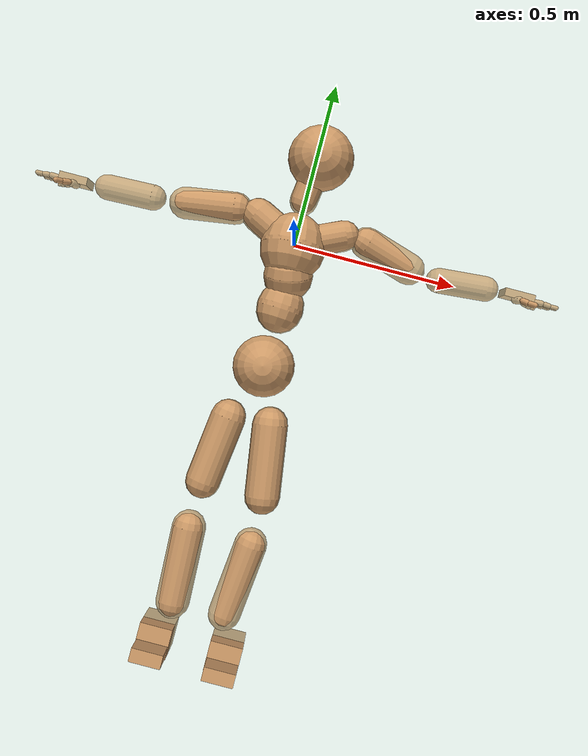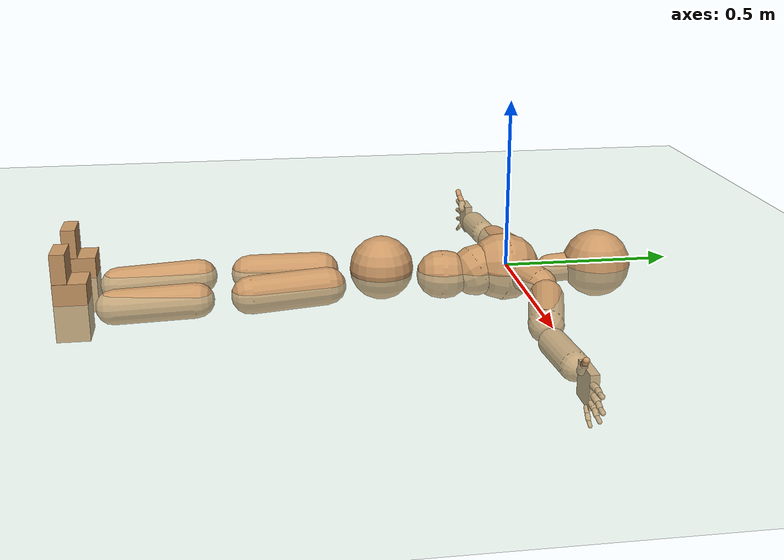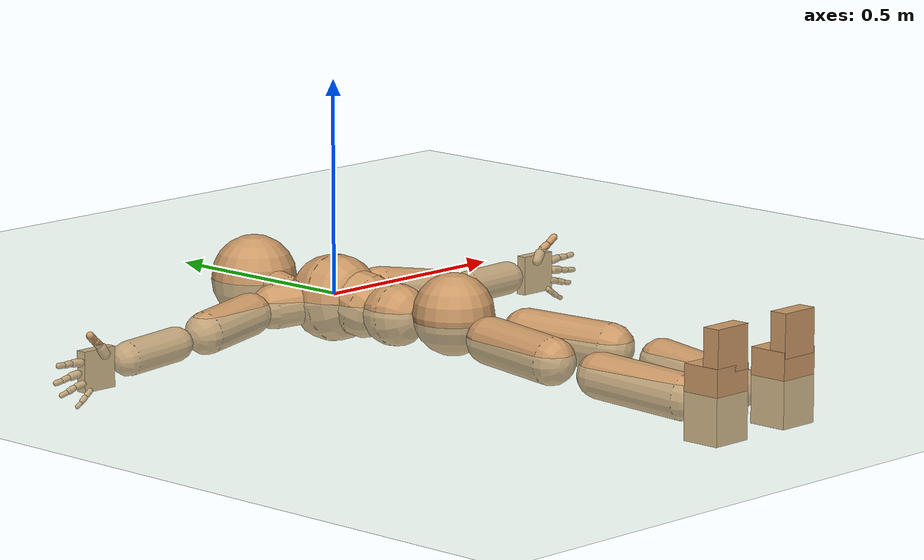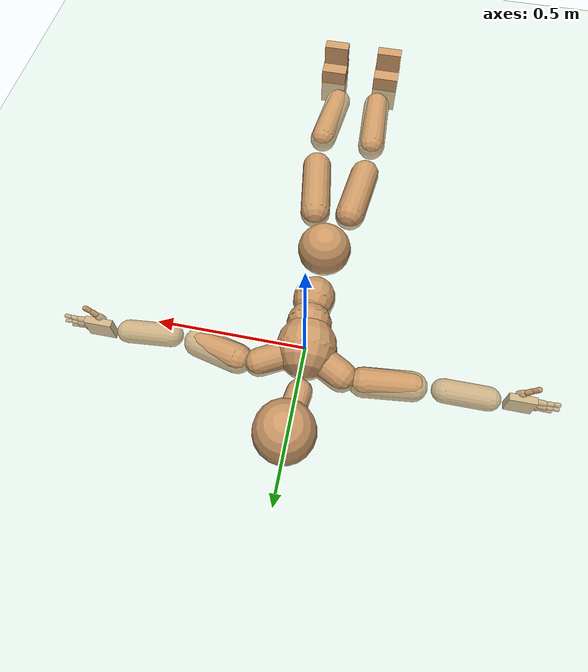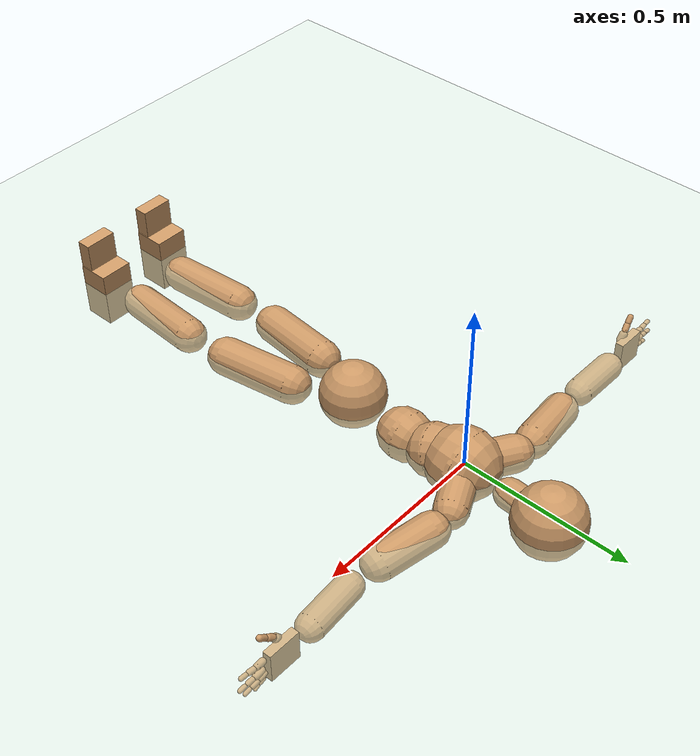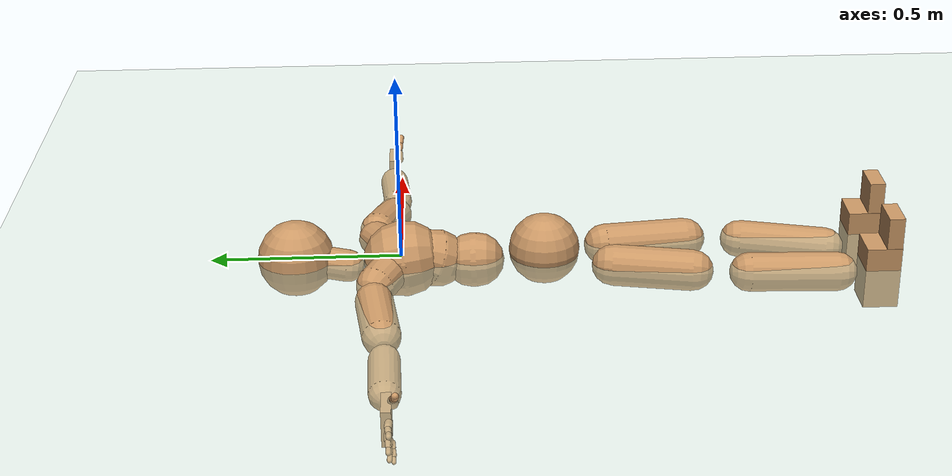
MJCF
<mujoco model="humanoid">
  <compiler coordinate="local"/>
  <default>
    <joint damping="0.0" armature="0.01" stiffness="0.0" limited="true"/>
    <geom conaffinity="1" condim="3" contype="7" margin="0.001" rgba="0.8 0.6 .4 1"/>
  </default>
  <asset>
    <texture type="skybox" builtin="gradient" rgb1=".4 .5 .6" rgb2="0 0 0" width="100" height="100"/>
    <texture builtin="flat" height="1278" mark="cross" markrgb="1 1 1" name="texgeom" random="0.01" rgb1="0.8 0.6 0.4" rgb2="0.8 0.6 0.4" type="cube" width="127"/>
    <texture builtin="checker" height="100" name="texplane" rgb1="0 0 0" rgb2="0.8 0.8 0.8" type="2d" width="100"/>
    <material name="MatPlane" reflectance="0.5" shininess="1" specular="1" texrepeat="60 60" texture="texplane"/>
    <material name="geom" texture="texgeom" texuniform="true"/>
  </asset>
  <worldbody>
    <light cutoff="100" diffuse="1 1 1" dir="-0 0 -1.3" directional="true" exponent="1" pos="0 0 1.3" specular=".1 .1 .1"/>
    <geom conaffinity="1" condim="3" name="floor" pos="0 0 0" rgba="0.8 0.9 0.8 1" size="100 100 .2" type="plane" material="MatPlane"/>
    <body name="Pelvis" pos="0.0026 -0.3798 0.0105">
      <freejoint name="Pelvis"/>
      <geom type="sphere" contype="1" conaffinity="1" density="4629.6296296296305" size="0.0944" pos="0.0000 0.0000 0.0000" name="Pelvis"/>
      <body name="L_Hip" pos="0.0525 -0.0941 -0.0245">
        <joint name="L_Hip_x" type="hinge" pos="0 0 0" axis="1 0 0" user="250 2.5 1 500 10 2" armature="0.01" range="-90.0000 90.0000" damping="0" stiffness="0"/>
        <joint name="L_Hip_y" type="hinge" pos="0 0 0" axis="0 1 0" user="250 2.5 1 500 10 2" armature="0.01" range="-90.0000 90.0000" damping="0" stiffness="0"/>
        <joint name="L_Hip_z" type="hinge" pos="0 0 0" axis="0 0 1" user="250 2.5 1 500 10 2" armature="0.01" range="-90.0000 90.0000" damping="0" stiffness="0"/>
        <geom type="capsule" contype="1" conaffinity="1" density="2040.816327" fromto="0.0109 -0.0736 -0.0014 0.0436 -0.2946 -0.0055" size="0.0553" name="L_Hip"/>
        <body name="L_Knee" pos="0.0546 -0.3682 -0.0069">
          <joint name="L_Knee_x" type="hinge" pos="0 0 0" axis="1 0 0" user="250 2.5 1 500 10 2" armature="0.01" range="-180.0000 180.0000" damping="0" stiffness="0"/>
          <joint name="L_Knee_y" type="hinge" pos="0 0 0" axis="0 1 0" user="250 2.5 1 500 10 2" armature="0.01" range="-5.6250 5.6250" damping="0" stiffness="0"/>
          <joint name="L_Knee_z" type="hinge" pos="0 0 0" axis="0 0 1" user="250 2.5 1 500 10 2" armature="0.01" range="-5.6250 5.6250" damping="0" stiffness="0"/>
          <geom type="capsule" contype="1" conaffinity="1" density="1234.567901" fromto="-0.0082 -0.0777 -0.0057 -0.0330 -0.3106 -0.0228" size="0.0507" name="L_Knee"/>
          <body name="L_Ankle" pos="-0.0412 -0.3883 -0.0285">
            <joint name="L_Ankle_x" type="hinge" pos="0 0 0" axis="1 0 0" user="150 2.5 1 500 10 2" armature="0.01" range="-90.0000 90.0000" damping="0" stiffness="0"/>
            <joint name="L_Ankle_y" type="hinge" pos="0 0 0" axis="0 1 0" user="150 2.5 1 500 10 2" armature="0.01" range="-90.0000 90.0000" damping="0" stiffness="0"/>
            <joint name="L_Ankle_z" type="hinge" pos="0 0 0" axis="0 0 1" user="150 2.5 1 500 10 2" armature="0.01" range="-90.0000 90.0000" damping="0" stiffness="0"/>
            <geom type="box" density="446.238823" pos="0.0403 -0.0276 0.0244" size="0.0497 0.0463 0.0845" quat="1.0000 0.0000 0.0000 0.0000" name="L_Ankle"/>
            <body name="L_Toe" pos="0.0468 -0.057 0.1184">
              <joint name="L_Toe_x" type="hinge" pos="0 0 0" axis="1 0 0" user="150 1 1 500 1 1" armature="0.01" range="-90.0000 90.0000" damping="0" stiffness="0"/>
              <joint name="L_Toe_y" type="hinge" pos="0 0 0" axis="0 1 0" user="150 1 1 500 1 1" armature="0.01" range="-45.0000 45.0000" damping="0" stiffness="0"/>
              <joint name="L_Toe_z" type="hinge" pos="0 0 0" axis="0 0 1" user="150 1 1 500 1 1" armature="0.01" range="-45.0000 45.0000" damping="0" stiffness="0"/>
              <geom type="box" density="422.849326" pos="-0.0064 0.0038 0.0260" size="0.0478 0.0207 0.0498" quat="1.0000 0.0000 0.0000 0.0000" name="L_Toe"/>
            </body>
          </body>
        </body>
      </body>
      <body name="R_Hip" pos="-0.0572 -0.1065 -0.0195">
        <joint name="R_Hip_x" type="hinge" pos="0 0 0" axis="1 0 0" user="250 2.5 1 500 10 2" armature="0.01" range="-90.0000 90.0000" damping="0" stiffness="0"/>
        <joint name="R_Hip_y" type="hinge" pos="0 0 0" axis="0 1 0" user="250 2.5 1 500 10 2" armature="0.01" range="-90.0000 90.0000" damping="0" stiffness="0"/>
        <joint name="R_Hip_z" type="hinge" pos="0 0 0" axis="0 0 1" user="250 2.5 1 500 10 2" armature="0.01" range="-90.0000 90.0000" damping="0" stiffness="0"/>
        <geom type="capsule" contype="1" conaffinity="1" density="2040.816327" fromto="-0.0089 -0.0701 -0.0028 -0.0355 -0.2804 -0.0113" size="0.0546" name="R_Hip"/>
        <body name="R_Knee" pos="-0.0444 -0.3504 -0.0141">
          <joint name="R_Knee_x" type="hinge" pos="0 0 0" axis="1 0 0" user="250 2.5 1 500 10 2" armature="0.01" range="-180.0000 180.0000" damping="0" stiffness="0"/>
          <joint name="R_Knee_y" type="hinge" pos="0 0 0" axis="0 1 0" user="250 2.5 1 500 10 2" armature="0.01" range="-5.6250 5.6250" damping="0" stiffness="0"/>
          <joint name="R_Knee_z" type="hinge" pos="0 0 0" axis="0 0 1" user="250 2.5 1 500 10 2" armature="0.01" range="-5.6250 5.6250" damping="0" stiffness="0"/>
          <geom type="capsule" contype="1" conaffinity="1" density="1234.567901" fromto="0.0029 -0.0792 -0.0035 0.0115 -0.3169 -0.0140" size="0.0522" name="R_Knee"/>
          <body name="R_Ankle" pos="0.0143 -0.3961 -0.0175">
            <joint name="R_Ankle_x" type="hinge" pos="0 0 0" axis="1 0 0" user="150 1 1 500 10 2" armature="0.01" range="-90.0000 90.0000" damping="0" stiffness="0"/>
            <joint name="R_Ankle_y" type="hinge" pos="0 0 0" axis="0 1 0" user="150 1 1 500 10 2" armature="0.01" range="-90.0000 90.0000" damping="0" stiffness="0"/>
            <joint name="R_Ankle_z" type="hinge" pos="0 0 0" axis="0 0 1" user="150 1 1 500 10 2" armature="0.01" range="-90.0000 90.0000" damping="0" stiffness="0"/>
            <geom type="box" density="446.2318" pos="-0.0241 -0.0252 0.0156" size="0.0497 0.0463 0.0845" quat="1.0000 0.0000 0.0000 0.0000" name="R_Ankle"/>
            <body name="R_Toe" pos="-0.0386 -0.0575 0.1194">
              <joint name="R_Toe_x" type="hinge" pos="0 0 0" axis="1 0 0" user="150 1 1 500 1 1" armature="0.01" range="-90.0000 90.0000" damping="0" stiffness="0"/>
              <joint name="R_Toe_y" type="hinge" pos="0 0 0" axis="0 1 0" user="150 1 1 500 1 1" armature="0.01" range="-45.0000 45.0000" damping="0" stiffness="0"/>
              <joint name="R_Toe_z" type="hinge" pos="0 0 0" axis="0 0 1" user="150 1 1 500 1 1" armature="0.01" range="-45.0000 45.0000" damping="0" stiffness="0"/>
              <geom type="box" density="422.866278" pos="0.0145 0.0067 0.0162" size="0.0478 0.0207 0.0498" quat="1.0000 0.0000 0.0000 0.0000" name="R_Toe"/>
            </body>
          </body>
        </body>
      </body>
      <body name="Torso" pos="-0.002 0.112 -0.0271">
        <joint name="Torso_x" type="hinge" pos="0 0 0" axis="1 0 0" user="500 5 1 500 10 2" armature="0.01" range="-60.0000 60.0000" damping="0" stiffness="0"/>
        <joint name="Torso_y" type="hinge" pos="0 0 0" axis="0 1 0" user="500 5 1 500 10 2" armature="0.01" range="-60.0000 60.0000" damping="0" stiffness="0"/>
        <joint name="Torso_z" type="hinge" pos="0 0 0" axis="0 0 1" user="500 5 1 500 10 2" armature="0.01" range="-60.0000 60.0000" damping="0" stiffness="0"/>
        <geom type="capsule" contype="1" conaffinity="1" density="2040.816327" fromto="0.0039 0.0665 -0.0026 0.0047 0.0813 -0.0031" size="0.0721" name="Torso"/>
        <body name="Spine" pos="0.0086 0.1479 -0.0057">
          <joint name="Spine_x" type="hinge" pos="0 0 0" axis="1 0 0" user="500 5 1 500 10 2" armature="0.01" range="-60.0000 60.0000" damping="0" stiffness="0"/>
          <joint name="Spine_y" type="hinge" pos="0 0 0" axis="0 1 0" user="500 5 1 500 10 2" armature="0.01" range="-60.0000 60.0000" damping="0" stiffness="0"/>
          <joint name="Spine_z" type="hinge" pos="0 0 0" axis="0 0 1" user="500 5 1 500 10 2" armature="0.01" range="-60.0000 60.0000" damping="0" stiffness="0"/>
          <geom type="capsule" contype="1" conaffinity="1" density="2040.816327" fromto="-0.0048 0.0256 0.0102 -0.0059 0.0312 0.0125" size="0.0763" name="Spine"/>
          <body name="Chest" pos="-0.0108 0.0568 0.0227">
            <joint name="Chest_x" type="hinge" pos="0 0 0" axis="1 0 0" user="500 5 1 500 10 2" armature="0.01" range="-60.0000 60.0000" damping="0" stiffness="0"/>
            <joint name="Chest_y" type="hinge" pos="0 0 0" axis="0 1 0" user="500 5 1 500 10 2" armature="0.01" range="-60.0000 60.0000" damping="0" stiffness="0"/>
            <joint name="Chest_z" type="hinge" pos="0 0 0" axis="0 0 1" user="500 5 1 500 10 2" armature="0.01" range="-60.0000 60.0000" damping="0" stiffness="0"/>
            <geom type="capsule" contype="1" conaffinity="1" density="2040.816327" fromto="-0.0019 0.0513 -0.0062 -0.0024 0.0627 -0.0076" size="0.1006" name="Chest"/>
            <body name="Neck" pos="-0.0118 0.1692 -0.0259">
              <joint name="Neck_x" type="hinge" pos="0 0 0" axis="1 0 0" user="150 1 1 250 50 4" armature="0.01" range="-180.0000 180.0000" damping="0" stiffness="0"/>
              <joint name="Neck_y" type="hinge" pos="0 0 0" axis="0 1 0" user="150 1 1 250 50 4" armature="0.01" range="-180.0000 180.0000" damping="0" stiffness="0"/>
              <joint name="Neck_z" type="hinge" pos="0 0 0" axis="0 0 1" user="150 1 1 250 50 4" armature="0.01" range="-180.0000 180.0000" damping="0" stiffness="0"/>
              <geom type="capsule" contype="1" conaffinity="1" density="1000" fromto="0.0050 0.0343 0.0043 0.0198 0.1374 0.0171" size="0.0427" name="Neck"/>
              <body name="Head" pos="0.0248 0.1717 0.0214">
                <joint name="Head_x" type="hinge" pos="0 0 0" axis="1 0 0" user="150 1 1 250 50 4" armature="0.01" range="-90.0000 90.0000" damping="0" stiffness="0"/>
                <joint name="Head_y" type="hinge" pos="0 0 0" axis="0 1 0" user="150 1 1 250 50 4" armature="0.01" range="-90.0000 90.0000" damping="0" stiffness="0"/>
                <joint name="Head_z" type="hinge" pos="0 0 0" axis="0 0 1" user="150 1 1 250 50 4" armature="0.01" range="-90.0000 90.0000" damping="0" stiffness="0"/>
                <geom type="sphere" contype="1" conaffinity="1" density="1000" size="0.1013" pos="0.0000 0.0000 0.0000" name="Head"/>
              </body>
            </body>
            <body name="L_Thorax" pos="0.0459 0.0869 -0.0049">
              <joint name="L_Thorax_x" type="hinge" pos="0 0 0" axis="1 0 0" user="200 2 1 500 50 4" armature="0.01" range="-180.0000 180.0000" damping="0" stiffness="0"/>
              <joint name="L_Thorax_y" type="hinge" pos="0 0 0" axis="0 1 0" user="200 2 1 500 50 4" armature="0.01" range="-180.0000 180.0000" damping="0" stiffness="0"/>
              <joint name="L_Thorax_z" type="hinge" pos="0 0 0" axis="0 0 1" user="200 2 1 500 50 4" armature="0.01" range="-180.0000 180.0000" damping="0" stiffness="0"/>
              <geom type="capsule" contype="1" conaffinity="1" density="1000" fromto="0.0237 0.0113 -0.0029 0.0946 0.0452 -0.0118" size="0.0476" name="L_Thorax"/>
              <body name="L_Shoulder" pos="0.1183 0.0565 -0.0147">
                <joint name="L_Shoulder_x" type="hinge" pos="0 0 0" axis="1 0 0" user="200 2 1 500 50 4" armature="0.01" range="-180.0000 180.0000" damping="0" stiffness="0"/>
                <joint name="L_Shoulder_y" type="hinge" pos="0 0 0" axis="0 1 0" user="200 2 1 500 50 4" armature="0.01" range="-180.0000 180.0000" damping="0" stiffness="0"/>
                <joint name="L_Shoulder_z" type="hinge" pos="0 0 0" axis="0 0 1" user="200 2 1 500 50 4" armature="0.01" range="-180.0000 180.0000" damping="0" stiffness="0"/>
                <geom type="capsule" contype="1" conaffinity="1" density="1000" fromto="0.0493 -0.0138 -0.0079 0.1973 -0.0554 -0.0316" size="0.0496" name="L_Shoulder"/>
                <body name="L_Elbow" pos="0.2467 -0.0692 -0.0395">
                  <joint name="L_Elbow_x" type="hinge" pos="0 0 0" axis="1 0 0" user="150 1 1 150 10 2" armature="0.01" range="-720.0000 720.0000" damping="0" stiffness="0"/>
                  <joint name="L_Elbow_y" type="hinge" pos="0 0 0" axis="0 1 0" user="150 1 1 150 10 2" armature="0.01" range="-720.0000 720.0000" damping="0" stiffness="0"/>
                  <joint name="L_Elbow_z" type="hinge" pos="0 0 0" axis="0 0 1" user="150 1 1 150 10 2" armature="0.01" range="-720.0000 720.0000" damping="0" stiffness="0"/>
                  <geom type="capsule" contype="1" conaffinity="1" density="1000" fromto="0.0495 0.0041 -0.0003 0.1980 0.0163 -0.0011" size="0.0394" name="L_Elbow"/>
                  <body name="L_Wrist" pos="0.2474 0.0204 -0.0014">
                    <joint name="L_Wrist_x" type="hinge" pos="0 0 0" axis="1 0 0" user="100 1 1 150 1 1" armature="0.01" range="-180.0000 180.0000" damping="0" stiffness="0"/>
                    <joint name="L_Wrist_y" type="hinge" pos="0 0 0" axis="0 1 0" user="100 1 1 150 1 1" armature="0.01" range="-180.0000 180.0000" damping="0" stiffness="0"/>
                    <joint name="L_Wrist_z" type="hinge" pos="0 0 0" axis="0 0 1" user="100 1 1 150 1 1" armature="0.01" range="-180.0000 180.0000" damping="0" stiffness="0"/>
                    <geom type="box" density="1213.894676" pos="0.0513 -0.0015 -0.0029" size="0.0473 0.0122 0.0465" quat="1.0000 0.0000 0.0000 0.0000" name="L_Wrist"/>
                    <body name="L_Index1" pos="0.0996 -0.0083 0.0197">
                      <joint name="L_Index1_x" type="hinge" pos="0 0 0" axis="1 0 0" user="100 10 1 150" armature="0.01" range="-180.0000 180.0000" damping="0" stiffness="0"/>
                      <joint name="L_Index1_y" type="hinge" pos="0 0 0" axis="0 1 0" user="100 10 1 150" armature="0.01" range="-180.0000 180.0000" damping="0" stiffness="0"/>
                      <joint name="L_Index1_z" type="hinge" pos="0 0 0" axis="0 0 1" user="100 10 1 150" armature="0.01" range="-180.0000 180.0000" damping="0" stiffness="0"/>
                      <geom type="capsule" contype="1" conaffinity="1" density="1000" fromto="0.0064 0.0004 0.0006 0.0255 0.0018 0.0023" size="0.0093" name="L_Index1"/>
                      <body name="L_Index2" pos="0.0318 0.0022 0.0029">
                        <joint name="L_Index2_x" type="hinge" pos="0 0 0" axis="1 0 0" user="100 10 1 150" armature="0.01" range="-180.0000 180.0000" damping="0" stiffness="0"/>
                        <joint name="L_Index2_y" type="hinge" pos="0 0 0" axis="0 1 0" user="100 10 1 150" armature="0.01" range="-180.0000 180.0000" damping="0" stiffness="0"/>
                        <joint name="L_Index2_z" type="hinge" pos="0 0 0" axis="0 0 1" user="100 10 1 150" armature="0.01" range="-180.0000 180.0000" damping="0" stiffness="0"/>
                        <geom type="capsule" contype="1" conaffinity="1" density="1000" fromto="0.0045 -0.0005 -0.0000 0.0180 -0.0019 -0.0001" size="0.0077" name="L_Index2"/>
                        <body name="L_Index3" pos="0.0225 -0.0024 -0.0001">
                          <joint name="L_Index3_x" type="hinge" pos="0 0 0" axis="1 0 0" user="100 10 1 150" armature="0.01" range="-180.0000 180.0000" damping="0" stiffness="0"/>
                          <joint name="L_Index3_y" type="hinge" pos="0 0 0" axis="0 1 0" user="100 10 1 150" armature="0.01" range="-180.0000 180.0000" damping="0" stiffness="0"/>
                          <joint name="L_Index3_z" type="hinge" pos="0 0 0" axis="0 0 1" user="100 10 1 150" armature="0.01" range="-180.0000 180.0000" damping="0" stiffness="0"/>
                          <geom type="capsule" contype="1" conaffinity="1" density="1000" fromto="0.0049 -0.0001 0.0004 0.0196 -0.0003 0.0015" size="0.0065" name="L_Index3"/>
                        </body>
                      </body>
                    </body>
                    <body name="L_Middle1" pos="0.1071 -0.0061 -0.004">
                      <joint name="L_Middle1_x" type="hinge" pos="0 0 0" axis="1 0 0" user="100 10 1 150" armature="0.01" range="-180.0000 180.0000" damping="0" stiffness="0"/>
                      <joint name="L_Middle1_y" type="hinge" pos="0 0 0" axis="0 1 0" user="100 10 1 150" armature="0.01" range="-180.0000 180.0000" damping="0" stiffness="0"/>
                      <joint name="L_Middle1_z" type="hinge" pos="0 0 0" axis="0 0 1" user="100 10 1 150" armature="0.01" range="-180.0000 180.0000" damping="0" stiffness="0"/>
                      <geom type="capsule" contype="1" conaffinity="1" density="1000" fromto="0.0061 0.0001 -0.0008 0.0244 0.0006 -0.0032" size="0.0095" name="L_Middle1"/>
                      <body name="L_Middle2" pos="0.0305 0.0007 -0.004">
                        <joint name="L_Middle2_x" type="hinge" pos="0 0 0" axis="1 0 0" user="100 10 1 150" armature="0.01" range="-180.0000 180.0000" damping="0" stiffness="0"/>
                        <joint name="L_Middle2_y" type="hinge" pos="0 0 0" axis="0 1 0" user="100 10 1 150" armature="0.01" range="-180.0000 180.0000" damping="0" stiffness="0"/>
                        <joint name="L_Middle2_z" type="hinge" pos="0 0 0" axis="0 0 1" user="100 10 1 150" armature="0.01" range="-180.0000 180.0000" damping="0" stiffness="0"/>
                        <geom type="capsule" contype="1" conaffinity="1" density="1000" fromto="0.0047 -0.0004 -0.0008 0.0187 -0.0016 -0.0033" size="0.0071" name="L_Middle2"/>
                        <body name="L_Middle3" pos="0.0233 -0.0021 -0.0042">
                          <joint name="L_Middle3_x" type="hinge" pos="0 0 0" axis="1 0 0" user="100 10 1 150" armature="0.01" range="-180.0000 180.0000" damping="0" stiffness="0"/>
                          <joint name="L_Middle3_y" type="hinge" pos="0 0 0" axis="0 1 0" user="100 10 1 150" armature="0.01" range="-180.0000 180.0000" damping="0" stiffness="0"/>
                          <joint name="L_Middle3_z" type="hinge" pos="0 0 0" axis="0 0 1" user="100 10 1 150" armature="0.01" range="-180.0000 180.0000" damping="0" stiffness="0"/>
                          <geom type="capsule" contype="1" conaffinity="1" density="1000" fromto="0.0051 -0.0000 -0.0004 0.0203 -0.0000 -0.0017" size="0.0062" name="L_Middle3"/>
                        </body>
                      </body>
                    </body>
                    <body name="L_Pinky1" pos="0.0822 -0.0143 -0.0441">
                      <joint name="L_Pinky1_x" type="hinge" pos="0 0 0" axis="1 0 0" user="100 10 1 150" armature="0.01" range="-180.0000 180.0000" damping="0" stiffness="0"/>
                      <joint name="L_Pinky1_y" type="hinge" pos="0 0 0" axis="0 1 0" user="100 10 1 150" armature="0.01" range="-180.0000 180.0000" damping="0" stiffness="0"/>
                      <joint name="L_Pinky1_z" type="hinge" pos="0 0 0" axis="0 0 1" user="100 10 1 150" armature="0.01" range="-180.0000 180.0000" damping="0" stiffness="0"/>
                      <geom type="capsule" contype="1" conaffinity="1" density="1000" fromto="0.0032 -0.0002 -0.0024 0.0126 -0.0010 -0.0096" size="0.0067" name="L_Pinky1"/>
                      <body name="L_Pinky2" pos="0.0158 -0.0012 -0.012">
                        <joint name="L_Pinky2_x" type="hinge" pos="0 0 0" axis="1 0 0" user="100 10 1 150" armature="0.01" range="-180.0000 180.0000" damping="0" stiffness="0"/>
                        <joint name="L_Pinky2_y" type="hinge" pos="0 0 0" axis="0 1 0" user="100 10 1 150" armature="0.01" range="-180.0000 180.0000" damping="0" stiffness="0"/>
                        <joint name="L_Pinky2_z" type="hinge" pos="0 0 0" axis="0 0 1" user="100 10 1 150" armature="0.01" range="-180.0000 180.0000" damping="0" stiffness="0"/>
                        <geom type="capsule" contype="1" conaffinity="1" density="1000" fromto="0.0031 -0.0003 -0.0022 0.0125 -0.0014 -0.0089" size="0.0065" name="L_Pinky2"/>
                        <body name="L_Pinky3" pos="0.0157 -0.0017 -0.0111">
                          <joint name="L_Pinky3_x" type="hinge" pos="0 0 0" axis="1 0 0" user="100 10 1 150" armature="0.01" range="-180.0000 180.0000" damping="0" stiffness="0"/>
                          <joint name="L_Pinky3_y" type="hinge" pos="0 0 0" axis="0 1 0" user="100 10 1 150" armature="0.01" range="-180.0000 180.0000" damping="0" stiffness="0"/>
                          <joint name="L_Pinky3_z" type="hinge" pos="0 0 0" axis="0 0 1" user="100 10 1 150" armature="0.01" range="-180.0000 180.0000" damping="0" stiffness="0"/>
                          <geom type="capsule" contype="1" conaffinity="1" density="1000" fromto="0.0035 0.0001 -0.0018 0.0141 0.0002 -0.0073" size="0.005" name="L_Pinky3"/>
                        </body>
                      </body>
                    </body>
                    <body name="L_Ring1" pos="0.0954 -0.0089 -0.0275">
                      <joint name="L_Ring1_x" type="hinge" pos="0 0 0" axis="1 0 0" user="100 10 1 150" armature="0.01" range="-180.0000 180.0000" damping="0" stiffness="0"/>
                      <joint name="L_Ring1_y" type="hinge" pos="0 0 0" axis="0 1 0" user="100 10 1 150" armature="0.01" range="-180.0000 180.0000" damping="0" stiffness="0"/>
                      <joint name="L_Ring1_z" type="hinge" pos="0 0 0" axis="0 0 1" user="100 10 1 150" armature="0.01" range="-180.0000 180.0000" damping="0" stiffness="0"/>
                      <geom type="capsule" contype="1" conaffinity="1" density="1000" fromto="0.0056 0.0003 -0.0011 0.0225 0.0012 -0.0042" size="0.008" name="L_Ring1"/>
                      <body name="L_Ring2" pos="0.0281 0.0015 -0.0053">
                        <joint name="L_Ring2_x" type="hinge" pos="0 0 0" axis="1 0 0" user="100 10 1 150" armature="0.01" range="-180.0000 180.0000" damping="0" stiffness="0"/>
                        <joint name="L_Ring2_y" type="hinge" pos="0 0 0" axis="0 1 0" user="100 10 1 150" armature="0.01" range="-180.0000 180.0000" damping="0" stiffness="0"/>
                        <joint name="L_Ring2_z" type="hinge" pos="0 0 0" axis="0 0 1" user="100 10 1 150" armature="0.01" range="-180.0000 180.0000" damping="0" stiffness="0"/>
                        <geom type="capsule" contype="1" conaffinity="1" density="1000" fromto="0.0046 -0.0003 -0.0014 0.0182 -0.0012 -0.0056" size="0.0075" name="L_Ring2"/>
                        <body name="L_Ring3" pos="0.0228 -0.0015 -0.007">
                          <joint name="L_Ring3_x" type="hinge" pos="0 0 0" axis="1 0 0" user="100 10 1 150" armature="0.01" range="-180.0000 180.0000" damping="0" stiffness="0"/>
                          <joint name="L_Ring3_y" type="hinge" pos="0 0 0" axis="0 1 0" user="100 10 1 150" armature="0.01" range="-180.0000 180.0000" damping="0" stiffness="0"/>
                          <joint name="L_Ring3_z" type="hinge" pos="0 0 0" axis="0 0 1" user="100 10 1 150" armature="0.01" range="-180.0000 180.0000" damping="0" stiffness="0"/>
                          <geom type="capsule" contype="1" conaffinity="1" density="1000" fromto="0.0050 0.0001 -0.0010 0.0198 0.0004 -0.0040" size="0.0058" name="L_Ring3"/>
                        </body>
                      </body>
                    </body>
                    <body name="L_Thumb1" pos="0.0392 -0.0181 0.026">
                      <joint name="L_Thumb1_x" type="hinge" pos="0 0 0" axis="1 0 0" user="100 10 1 150" armature="0.01" range="-180.0000 180.0000" damping="0" stiffness="0"/>
                      <joint name="L_Thumb1_y" type="hinge" pos="0 0 0" axis="0 1 0" user="100 10 1 150" armature="0.01" range="-180.0000 180.0000" damping="0" stiffness="0"/>
                      <joint name="L_Thumb1_z" type="hinge" pos="0 0 0" axis="0 0 1" user="100 10 1 150" armature="0.01" range="-180.0000 180.0000" damping="0" stiffness="0"/>
                      <geom type="capsule" contype="1" conaffinity="1" density="1000" fromto="0.0034 0.0002 0.0051 0.0135 0.0008 0.0203" size="0.0121" name="L_Thumb1"/>
                      <body name="L_Thumb2" pos="0.0168 0.001 0.0254">
                        <joint name="L_Thumb2_x" type="hinge" pos="0 0 0" axis="1 0 0" user="100 10 1 150" armature="0.01" range="-180.0000 180.0000" damping="0" stiffness="0"/>
                        <joint name="L_Thumb2_y" type="hinge" pos="0 0 0" axis="0 1 0" user="100 10 1 150" armature="0.01" range="-180.0000 180.0000" damping="0" stiffness="0"/>
                        <joint name="L_Thumb2_z" type="hinge" pos="0 0 0" axis="0 0 1" user="100 10 1 150" armature="0.01" range="-180.0000 180.0000" damping="0" stiffness="0"/>
                        <geom type="capsule" contype="1" conaffinity="1" density="1000" fromto="0.0041 -0.0010 0.0031 0.0164 -0.0040 0.0125" size="0.0096" name="L_Thumb2"/>
                        <body name="L_Thumb3" pos="0.0205 -0.005 0.0156">
                          <joint name="L_Thumb3_x" type="hinge" pos="0 0 0" axis="1 0 0" user="100 10 1 150" armature="0.01" range="-180.0000 180.0000" damping="0" stiffness="0"/>
                          <joint name="L_Thumb3_y" type="hinge" pos="0 0 0" axis="0 1 0" user="100 10 1 150" armature="0.01" range="-180.0000 180.0000" damping="0" stiffness="0"/>
                          <joint name="L_Thumb3_z" type="hinge" pos="0 0 0" axis="0 0 1" user="100 10 1 150" armature="0.01" range="-180.0000 180.0000" damping="0" stiffness="0"/>
                          <geom type="capsule" contype="1" conaffinity="1" density="1000" fromto="0.0045 -0.0006 0.0035 0.0180 -0.0024 0.0141" size="0.0087" name="L_Thumb3"/>
                        </body>
                      </body>
                    </body>
                  </body>
                </body>
              </body>
            </body>
            <body name="R_Thorax" pos="-0.0469 0.0862 -0.0107">
              <joint name="R_Thorax_x" type="hinge" pos="0 0 0" axis="1 0 0" user="200 2 1 150 10 2" armature="0.01" range="-180.0000 180.0000" damping="0" stiffness="0"/>
              <joint name="R_Thorax_y" type="hinge" pos="0 0 0" axis="0 1 0" user="200 2 1 150 10 2" armature="0.01" range="-180.0000 180.0000" damping="0" stiffness="0"/>
              <joint name="R_Thorax_z" type="hinge" pos="0 0 0" axis="0 0 1" user="200 2 1 150 10 2" armature="0.01" range="-180.0000 180.0000" damping="0" stiffness="0"/>
              <geom type="capsule" contype="1" conaffinity="1" density="1000" fromto="-0.0204 0.0105 -0.0022 -0.0817 0.0418 -0.0088" size="0.0524" name="R_Thorax"/>
              <body name="R_Shoulder" pos="-0.1022 0.0523 -0.011">
                <joint name="R_Shoulder_x" type="hinge" pos="0 0 0" axis="1 0 0" user="200 2 1 250 10 2" armature="0.01" range="-180.0000 180.0000" damping="0" stiffness="0"/>
                <joint name="R_Shoulder_y" type="hinge" pos="0 0 0" axis="0 1 0" user="200 2 1 250 10 2" armature="0.01" range="-180.0000 180.0000" damping="0" stiffness="0"/>
                <joint name="R_Shoulder_z" type="hinge" pos="0 0 0" axis="0 0 1" user="200 2 1 250 10 2" armature="0.01" range="-180.0000 180.0000" damping="0" stiffness="0"/>
                <geom type="capsule" contype="1" conaffinity="1" density="1000" fromto="-0.0527 -0.0070 -0.0051 -0.2107 -0.0281 -0.0203" size="0.0495" name="R_Shoulder"/>
                <body name="R_Elbow" pos="-0.2633 -0.0351 -0.0253">
                  <joint name="R_Elbow_x" type="hinge" pos="0 0 0" axis="1 0 0" user="150 1 1 150 10 2" armature="0.01" range="-720.0000 720.0000" damping="0" stiffness="0"/>
                  <joint name="R_Elbow_y" type="hinge" pos="0 0 0" axis="0 1 0" user="150 1 1 150 10 2" armature="0.01" range="-720.0000 720.0000" damping="0" stiffness="0"/>
                  <joint name="R_Elbow_z" type="hinge" pos="0 0 0" axis="0 0 1" user="150 1 1 150 10 2" armature="0.01" range="-720.0000 720.0000" damping="0" stiffness="0"/>
                  <geom type="capsule" contype="1" conaffinity="1" density="1000" fromto="-0.0489 -0.0011 -0.0028 -0.1956 -0.0046 -0.0111" size="0.0397" name="R_Elbow"/>
                  <body name="R_Wrist" pos="-0.2445 -0.0057 -0.0138">
                    <joint name="R_Wrist_x" type="hinge" pos="0 0 0" axis="1 0 0" user="100 1 1 150 1 1" armature="0.01" range="-180.0000 180.0000" damping="0" stiffness="0"/>
                    <joint name="R_Wrist_y" type="hinge" pos="0 0 0" axis="0 1 0" user="100 1 1 150 1 1" armature="0.01" range="-180.0000 180.0000" damping="0" stiffness="0"/>
                    <joint name="R_Wrist_z" type="hinge" pos="0 0 0" axis="0 0 1" user="100 1 1 150 1 1" armature="0.01" range="-180.0000 180.0000" damping="0" stiffness="0"/>
                    <geom type="box" density="1242.239774" pos="-0.0525 -0.0046 -0.0024" size="0.0446 0.0122 0.0465" quat="1.0000 0.0000 0.0000 0.0000" name="R_Wrist"/>
                    <body name="R_Index1" pos="-0.0977 -0.0115 0.0201">
                      <joint name="R_Index1_x" type="hinge" pos="0 0 0" axis="1 0 0" user="100 10 1 150" armature="0.01" range="-180.0000 180.0000" damping="0" stiffness="0"/>
                      <joint name="R_Index1_y" type="hinge" pos="0 0 0" axis="0 1 0" user="100 10 1 150" armature="0.01" range="-180.0000 180.0000" damping="0" stiffness="0"/>
                      <joint name="R_Index1_z" type="hinge" pos="0 0 0" axis="0 0 1" user="100 10 1 150" armature="0.01" range="-180.0000 180.0000" damping="0" stiffness="0"/>
                      <geom type="capsule" contype="1" conaffinity="1" density="1000" fromto="-0.0064 0.0004 0.0006 -0.0255 0.0018 0.0023" size="0.0093" name="R_Index1"/>
                      <body name="R_Index2" pos="-0.0318 0.0022 0.0029">
                        <joint name="R_Index2_x" type="hinge" pos="0 0 0" axis="1 0 0" user="100 10 1 150" armature="0.01" range="-180.0000 180.0000" damping="0" stiffness="0"/>
                        <joint name="R_Index2_y" type="hinge" pos="0 0 0" axis="0 1 0" user="100 10 1 150" armature="0.01" range="-180.0000 180.0000" damping="0" stiffness="0"/>
                        <joint name="R_Index2_z" type="hinge" pos="0 0 0" axis="0 0 1" user="100 10 1 150" armature="0.01" range="-180.0000 180.0000" damping="0" stiffness="0"/>
                        <geom type="capsule" contype="1" conaffinity="1" density="1000" fromto="-0.0045 -0.0005 -0.0000 -0.0180 -0.0019 -0.0001" size="0.0077" name="R_Index2"/>
                        <body name="R_Index3" pos="-0.0225 -0.0024 -0.0001">
                          <joint name="R_Index3_x" type="hinge" pos="0 0 0" axis="1 0 0" user="100 10 1 150" armature="0.01" range="-180.0000 180.0000" damping="0" stiffness="0"/>
                          <joint name="R_Index3_y" type="hinge" pos="0 0 0" axis="0 1 0" user="100 10 1 150" armature="0.01" range="-180.0000 180.0000" damping="0" stiffness="0"/>
                          <joint name="R_Index3_z" type="hinge" pos="0 0 0" axis="0 0 1" user="100 10 1 150" armature="0.01" range="-180.0000 180.0000" damping="0" stiffness="0"/>
                          <geom type="capsule" contype="1" conaffinity="1" density="1000" fromto="-0.0041 -0.0001 0.0004 -0.0164 -0.0003 0.0015" size="0.0068" name="R_Index3"/>
                        </body>
                      </body>
                    </body>
                    <body name="R_Middle1" pos="-0.1052 -0.0092 -0.0035">
                      <joint name="R_Middle1_x" type="hinge" pos="0 0 0" axis="1 0 0" user="100 10 1 150" armature="0.01" range="-180.0000 180.0000" damping="0" stiffness="0"/>
                      <joint name="R_Middle1_y" type="hinge" pos="0 0 0" axis="0 1 0" user="100 10 1 150" armature="0.01" range="-180.0000 180.0000" damping="0" stiffness="0"/>
                      <joint name="R_Middle1_z" type="hinge" pos="0 0 0" axis="0 0 1" user="100 10 1 150" armature="0.01" range="-180.0000 180.0000" damping="0" stiffness="0"/>
                      <geom type="capsule" contype="1" conaffinity="1" density="1000" fromto="-0.0061 0.0001 -0.0008 -0.0244 0.0006 -0.0032" size="0.0095" name="R_Middle1"/>
                      <body name="R_Middle2" pos="-0.0305 0.0007 -0.004">
                        <joint name="R_Middle2_x" type="hinge" pos="0 0 0" axis="1 0 0" user="100 10 1 150" armature="0.01" range="-180.0000 180.0000" damping="0" stiffness="0"/>
                        <joint name="R_Middle2_y" type="hinge" pos="0 0 0" axis="0 1 0" user="100 10 1 150" armature="0.01" range="-180.0000 180.0000" damping="0" stiffness="0"/>
                        <joint name="R_Middle2_z" type="hinge" pos="0 0 0" axis="0 0 1" user="100 10 1 150" armature="0.01" range="-180.0000 180.0000" damping="0" stiffness="0"/>
                        <geom type="capsule" contype="1" conaffinity="1" density="1000" fromto="-0.0047 -0.0004 -0.0008 -0.0187 -0.0016 -0.0033" size="0.0071" name="R_Middle2"/>
                        <body name="R_Middle3" pos="-0.0233 -0.0021 -0.0042">
                          <joint name="R_Middle3_x" type="hinge" pos="0 0 0" axis="1 0 0" user="100 10 1 150" armature="0.01" range="-180.0000 180.0000" damping="0" stiffness="0"/>
                          <joint name="R_Middle3_y" type="hinge" pos="0 0 0" axis="0 1 0" user="100 10 1 150" armature="0.01" range="-180.0000 180.0000" damping="0" stiffness="0"/>
                          <joint name="R_Middle3_z" type="hinge" pos="0 0 0" axis="0 0 1" user="100 10 1 150" armature="0.01" range="-180.0000 180.0000" damping="0" stiffness="0"/>
                          <geom type="capsule" contype="1" conaffinity="1" density="1000" fromto="-0.0043 -0.0000 -0.0004 -0.0171 -0.0000 -0.0017" size="0.0065" name="R_Middle3"/>
                        </body>
                      </body>
                    </body>
                    <body name="R_Pinky1" pos="-0.0803 -0.0174 -0.0436">
                      <joint name="R_Pinky1_x" type="hinge" pos="0 0 0" axis="1 0 0" user="100 10 1 150" armature="0.01" range="-180.0000 180.0000" damping="0" stiffness="0"/>
                      <joint name="R_Pinky1_y" type="hinge" pos="0 0 0" axis="0 1 0" user="100 10 1 150" armature="0.01" range="-180.0000 180.0000" damping="0" stiffness="0"/>
                      <joint name="R_Pinky1_z" type="hinge" pos="0 0 0" axis="0 0 1" user="100 10 1 150" armature="0.01" range="-180.0000 180.0000" damping="0" stiffness="0"/>
                      <geom type="capsule" contype="1" conaffinity="1" density="1000" fromto="-0.0032 -0.0002 -0.0024 -0.0126 -0.0010 -0.0096" size="0.0067" name="R_Pinky1"/>
                      <body name="R_Pinky2" pos="-0.0158 -0.0012 -0.012">
                        <joint name="R_Pinky2_x" type="hinge" pos="0 0 0" axis="1 0 0" user="100 10 1 150" armature="0.01" range="-180.0000 180.0000" damping="0" stiffness="0"/>
                        <joint name="R_Pinky2_y" type="hinge" pos="0 0 0" axis="0 1 0" user="100 10 1 150" armature="0.01" range="-180.0000 180.0000" damping="0" stiffness="0"/>
                        <joint name="R_Pinky2_z" type="hinge" pos="0 0 0" axis="0 0 1" user="100 10 1 150" armature="0.01" range="-180.0000 180.0000" damping="0" stiffness="0"/>
                        <geom type="capsule" contype="1" conaffinity="1" density="1000" fromto="-0.0031 -0.0003 -0.0022 -0.0125 -0.0014 -0.0089" size="0.0065" name="R_Pinky2"/>
                        <body name="R_Pinky3" pos="-0.0157 -0.0017 -0.0111">
                          <joint name="R_Pinky3_x" type="hinge" pos="0 0 0" axis="1 0 0" user="100 10 1 150" armature="0.01" range="-180.0000 180.0000" damping="0" stiffness="0"/>
                          <joint name="R_Pinky3_y" type="hinge" pos="0 0 0" axis="0 1 0" user="100 10 1 150" armature="0.01" range="-180.0000 180.0000" damping="0" stiffness="0"/>
                          <joint name="R_Pinky3_z" type="hinge" pos="0 0 0" axis="0 0 1" user="100 10 1 150" armature="0.01" range="-180.0000 180.0000" damping="0" stiffness="0"/>
                          <geom type="capsule" contype="1" conaffinity="1" density="1000" fromto="-0.0027 0.0001 -0.0018 -0.0109 0.0002 -0.0073" size="0.0052" name="R_Pinky3"/>
                        </body>
                      </body>
                    </body>
                    <body name="R_Ring1" pos="-0.0935 -0.0121 -0.0271">
                      <joint name="R_Ring1_x" type="hinge" pos="0 0 0" axis="1 0 0" user="100 10 1 150" armature="0.01" range="-180.0000 180.0000" damping="0" stiffness="0"/>
                      <joint name="R_Ring1_y" type="hinge" pos="0 0 0" axis="0 1 0" user="100 10 1 150" armature="0.01" range="-180.0000 180.0000" damping="0" stiffness="0"/>
                      <joint name="R_Ring1_z" type="hinge" pos="0 0 0" axis="0 0 1" user="100 10 1 150" armature="0.01" range="-180.0000 180.0000" damping="0" stiffness="0"/>
                      <geom type="capsule" contype="1" conaffinity="1" density="1000" fromto="-0.0056 0.0003 -0.0011 -0.0225 0.0012 -0.0042" size="0.008" name="R_Ring1"/>
                      <body name="R_Ring2" pos="-0.0281 0.0015 -0.0053">
                        <joint name="R_Ring2_x" type="hinge" pos="0 0 0" axis="1 0 0" user="100 10 1 150" armature="0.01" range="-180.0000 180.0000" damping="0" stiffness="0"/>
                        <joint name="R_Ring2_y" type="hinge" pos="0 0 0" axis="0 1 0" user="100 10 1 150" armature="0.01" range="-180.0000 180.0000" damping="0" stiffness="0"/>
                        <joint name="R_Ring2_z" type="hinge" pos="0 0 0" axis="0 0 1" user="100 10 1 150" armature="0.01" range="-180.0000 180.0000" damping="0" stiffness="0"/>
                        <geom type="capsule" contype="1" conaffinity="1" density="1000" fromto="-0.0046 -0.0003 -0.0014 -0.0182 -0.0012 -0.0056" size="0.0075" name="R_Ring2"/>
                        <body name="R_Ring3" pos="-0.0228 -0.0015 -0.007">
                          <joint name="R_Ring3_x" type="hinge" pos="0 0 0" axis="1 0 0" user="100 10 1 150" armature="0.01" range="-180.0000 180.0000" damping="0" stiffness="0"/>
                          <joint name="R_Ring3_y" type="hinge" pos="0 0 0" axis="0 1 0" user="100 10 1 150" armature="0.01" range="-180.0000 180.0000" damping="0" stiffness="0"/>
                          <joint name="R_Ring3_z" type="hinge" pos="0 0 0" axis="0 0 1" user="100 10 1 150" armature="0.01" range="-180.0000 180.0000" damping="0" stiffness="0"/>
                          <geom type="capsule" contype="1" conaffinity="1" density="1000" fromto="-0.0042 0.0001 -0.0010 -0.0166 0.0004 -0.0040" size="0.0061" name="R_Ring3"/>
                        </body>
                      </body>
                    </body>
                    <body name="R_Thumb1" pos="-0.0373 -0.0212 0.0265">
                      <joint name="R_Thumb1_x" type="hinge" pos="0 0 0" axis="1 0 0" user="100 10 1 150" armature="0.01" range="-180.0000 180.0000" damping="0" stiffness="0"/>
                      <joint name="R_Thumb1_y" type="hinge" pos="0 0 0" axis="0 1 0" user="100 10 1 150" armature="0.01" range="-180.0000 180.0000" damping="0" stiffness="0"/>
                      <joint name="R_Thumb1_z" type="hinge" pos="0 0 0" axis="0 0 1" user="100 10 1 150" armature="0.01" range="-180.0000 180.0000" damping="0" stiffness="0"/>
                      <geom type="capsule" contype="1" conaffinity="1" density="1000" fromto="-0.0034 0.0002 0.0051 -0.0135 0.0008 0.0203" size="0.0121" name="R_Thumb1"/>
                      <body name="R_Thumb2" pos="-0.0168 0.001 0.0254">
                        <joint name="R_Thumb2_x" type="hinge" pos="0 0 0" axis="1 0 0" user="100 10 1 150" armature="0.01" range="-180.0000 180.0000" damping="0" stiffness="0"/>
                        <joint name="R_Thumb2_y" type="hinge" pos="0 0 0" axis="0 1 0" user="100 10 1 150" armature="0.01" range="-180.0000 180.0000" damping="0" stiffness="0"/>
                        <joint name="R_Thumb2_z" type="hinge" pos="0 0 0" axis="0 0 1" user="100 10 1 150" armature="0.01" range="-180.0000 180.0000" damping="0" stiffness="0"/>
                        <geom type="capsule" contype="1" conaffinity="1" density="1000" fromto="-0.0041 -0.0010 0.0031 -0.0164 -0.0040 0.0125" size="0.0096" name="R_Thumb2"/>
                        <body name="R_Thumb3" pos="-0.0205 -0.005 0.0156">
                          <joint name="R_Thumb3_x" type="hinge" pos="0 0 0" axis="1 0 0" user="100 10 1 150" armature="0.01" range="-180.0000 180.0000" damping="0" stiffness="0"/>
                          <joint name="R_Thumb3_y" type="hinge" pos="0 0 0" axis="0 1 0" user="100 10 1 150" armature="0.01" range="-180.0000 180.0000" damping="0" stiffness="0"/>
                          <joint name="R_Thumb3_z" type="hinge" pos="0 0 0" axis="0 0 1" user="100 10 1 150" armature="0.01" range="-180.0000 180.0000" damping="0" stiffness="0"/>
                          <geom type="capsule" contype="1" conaffinity="1" density="1000" fromto="-0.0037 -0.0006 0.0035 -0.0148 -0.0024 0.0141" size="0.009" name="R_Thumb3"/>
                        </body>
                      </body>
                    </body>
                  </body>
                </body>
              </body>
            </body>
          </body>
        </body>
      </body>
    </body>
  </worldbody>
  <actuator>
    <motor name="L_Hip_x" joint="L_Hip_x" gear="1"/>
    <motor name="L_Hip_y" joint="L_Hip_y" gear="1"/>
    <motor name="L_Hip_z" joint="L_Hip_z" gear="1"/>
    <motor name="L_Knee_x" joint="L_Knee_x" gear="1"/>
    <motor name="L_Knee_y" joint="L_Knee_y" gear="1"/>
    <motor name="L_Knee_z" joint="L_Knee_z" gear="1"/>
    <motor name="L_Ankle_x" joint="L_Ankle_x" gear="1"/>
    <motor name="L_Ankle_y" joint="L_Ankle_y" gear="1"/>
    <motor name="L_Ankle_z" joint="L_Ankle_z" gear="1"/>
    <motor name="L_Toe_x" joint="L_Toe_x" gear="1"/>
    <motor name="L_Toe_y" joint="L_Toe_y" gear="1"/>
    <motor name="L_Toe_z" joint="L_Toe_z" gear="1"/>
    <motor name="R_Hip_x" joint="R_Hip_x" gear="1"/>
    <motor name="R_Hip_y" joint="R_Hip_y" gear="1"/>
    <motor name="R_Hip_z" joint="R_Hip_z" gear="1"/>
    <motor name="R_Knee_x" joint="R_Knee_x" gear="1"/>
    <motor name="R_Knee_y" joint="R_Knee_y" gear="1"/>
    <motor name="R_Knee_z" joint="R_Knee_z" gear="1"/>
    <motor name="R_Ankle_x" joint="R_Ankle_x" gear="1"/>
    <motor name="R_Ankle_y" joint="R_Ankle_y" gear="1"/>
    <motor name="R_Ankle_z" joint="R_Ankle_z" gear="1"/>
    <motor name="R_Toe_x" joint="R_Toe_x" gear="1"/>
    <motor name="R_Toe_y" joint="R_Toe_y" gear="1"/>
    <motor name="R_Toe_z" joint="R_Toe_z" gear="1"/>
    <motor name="Torso_x" joint="Torso_x" gear="1"/>
    <motor name="Torso_y" joint="Torso_y" gear="1"/>
    <motor name="Torso_z" joint="Torso_z" gear="1"/>
    <motor name="Spine_x" joint="Spine_x" gear="1"/>
    <motor name="Spine_y" joint="Spine_y" gear="1"/>
    <motor name="Spine_z" joint="Spine_z" gear="1"/>
    <motor name="Chest_x" joint="Chest_x" gear="1"/>
    <motor name="Chest_y" joint="Chest_y" gear="1"/>
    <motor name="Chest_z" joint="Chest_z" gear="1"/>
    <motor name="Neck_x" joint="Neck_x" gear="1"/>
    <motor name="Neck_y" joint="Neck_y" gear="1"/>
    <motor name="Neck_z" joint="Neck_z" gear="1"/>
    <motor name="Head_x" joint="Head_x" gear="1"/>
    <motor name="Head_y" joint="Head_y" gear="1"/>
    <motor name="Head_z" joint="Head_z" gear="1"/>
    <motor name="L_Thorax_x" joint="L_Thorax_x" gear="1"/>
    <motor name="L_Thorax_y" joint="L_Thorax_y" gear="1"/>
    <motor name="L_Thorax_z" joint="L_Thorax_z" gear="1"/>
    <motor name="L_Shoulder_x" joint="L_Shoulder_x" gear="1"/>
    <motor name="L_Shoulder_y" joint="L_Shoulder_y" gear="1"/>
    <motor name="L_Shoulder_z" joint="L_Shoulder_z" gear="1"/>
    <motor name="L_Elbow_x" joint="L_Elbow_x" gear="1"/>
    <motor name="L_Elbow_y" joint="L_Elbow_y" gear="1"/>
    <motor name="L_Elbow_z" joint="L_Elbow_z" gear="1"/>
    <motor name="L_Wrist_x" joint="L_Wrist_x" gear="1"/>
    <motor name="L_Wrist_y" joint="L_Wrist_y" gear="1"/>
    <motor name="L_Wrist_z" joint="L_Wrist_z" gear="1"/>
    <motor name="L_Index1_x" joint="L_Index1_x" gear="1"/>
    <motor name="L_Index1_y" joint="L_Index1_y" gear="1"/>
    <motor name="L_Index1_z" joint="L_Index1_z" gear="1"/>
    <motor name="L_Index2_x" joint="L_Index2_x" gear="1"/>
    <motor name="L_Index2_y" joint="L_Index2_y" gear="1"/>
    <motor name="L_Index2_z" joint="L_Index2_z" gear="1"/>
    <motor name="L_Index3_x" joint="L_Index3_x" gear="1"/>
    <motor name="L_Index3_y" joint="L_Index3_y" gear="1"/>
    <motor name="L_Index3_z" joint="L_Index3_z" gear="1"/>
    <motor name="L_Middle1_x" joint="L_Middle1_x" gear="1"/>
    <motor name="L_Middle1_y" joint="L_Middle1_y" gear="1"/>
    <motor name="L_Middle1_z" joint="L_Middle1_z" gear="1"/>
    <motor name="L_Middle2_x" joint="L_Middle2_x" gear="1"/>
    <motor name="L_Middle2_y" joint="L_Middle2_y" gear="1"/>
    <motor name="L_Middle2_z" joint="L_Middle2_z" gear="1"/>
    <motor name="L_Middle3_x" joint="L_Middle3_x" gear="1"/>
    <motor name="L_Middle3_y" joint="L_Middle3_y" gear="1"/>
    <motor name="L_Middle3_z" joint="L_Middle3_z" gear="1"/>
    <motor name="L_Pinky1_x" joint="L_Pinky1_x" gear="1"/>
    <motor name="L_Pinky1_y" joint="L_Pinky1_y" gear="1"/>
    <motor name="L_Pinky1_z" joint="L_Pinky1_z" gear="1"/>
    <motor name="L_Pinky2_x" joint="L_Pinky2_x" gear="1"/>
    <motor name="L_Pinky2_y" joint="L_Pinky2_y" gear="1"/>
    <motor name="L_Pinky2_z" joint="L_Pinky2_z" gear="1"/>
    <motor name="L_Pinky3_x" joint="L_Pinky3_x" gear="1"/>
    <motor name="L_Pinky3_y" joint="L_Pinky3_y" gear="1"/>
    <motor name="L_Pinky3_z" joint="L_Pinky3_z" gear="1"/>
    <motor name="L_Ring1_x" joint="L_Ring1_x" gear="1"/>
    <motor name="L_Ring1_y" joint="L_Ring1_y" gear="1"/>
    <motor name="L_Ring1_z" joint="L_Ring1_z" gear="1"/>
    <motor name="L_Ring2_x" joint="L_Ring2_x" gear="1"/>
    <motor name="L_Ring2_y" joint="L_Ring2_y" gear="1"/>
    <motor name="L_Ring2_z" joint="L_Ring2_z" gear="1"/>
    <motor name="L_Ring3_x" joint="L_Ring3_x" gear="1"/>
    <motor name="L_Ring3_y" joint="L_Ring3_y" gear="1"/>
    <motor name="L_Ring3_z" joint="L_Ring3_z" gear="1"/>
    <motor name="L_Thumb1_x" joint="L_Thumb1_x" gear="1"/>
    <motor name="L_Thumb1_y" joint="L_Thumb1_y" gear="1"/>
    <motor name="L_Thumb1_z" joint="L_Thumb1_z" gear="1"/>
    <motor name="L_Thumb2_x" joint="L_Thumb2_x" gear="1"/>
    <motor name="L_Thumb2_y" joint="L_Thumb2_y" gear="1"/>
    <motor name="L_Thumb2_z" joint="L_Thumb2_z" gear="1"/>
    <motor name="L_Thumb3_x" joint="L_Thumb3_x" gear="1"/>
    <motor name="L_Thumb3_y" joint="L_Thumb3_y" gear="1"/>
    <motor name="L_Thumb3_z" joint="L_Thumb3_z" gear="1"/>
    <motor name="R_Thorax_x" joint="R_Thorax_x" gear="1"/>
    <motor name="R_Thorax_y" joint="R_Thorax_y" gear="1"/>
    <motor name="R_Thorax_z" joint="R_Thorax_z" gear="1"/>
    <motor name="R_Shoulder_x" joint="R_Shoulder_x" gear="1"/>
    <motor name="R_Shoulder_y" joint="R_Shoulder_y" gear="1"/>
    <motor name="R_Shoulder_z" joint="R_Shoulder_z" gear="1"/>
    <motor name="R_Elbow_x" joint="R_Elbow_x" gear="1"/>
    <motor name="R_Elbow_y" joint="R_Elbow_y" gear="1"/>
    <motor name="R_Elbow_z" joint="R_Elbow_z" gear="1"/>
    <motor name="R_Wrist_x" joint="R_Wrist_x" gear="1"/>
    <motor name="R_Wrist_y" joint="R_Wrist_y" gear="1"/>
    <motor name="R_Wrist_z" joint="R_Wrist_z" gear="1"/>
    <motor name="R_Index1_x" joint="R_Index1_x" gear="1"/>
    <motor name="R_Index1_y" joint="R_Index1_y" gear="1"/>
    <motor name="R_Index1_z" joint="R_Index1_z" gear="1"/>
    <motor name="R_Index2_x" joint="R_Index2_x" gear="1"/>
    <motor name="R_Index2_y" joint="R_Index2_y" gear="1"/>
    <motor name="R_Index2_z" joint="R_Index2_z" gear="1"/>
    <motor name="R_Index3_x" joint="R_Index3_x" gear="1"/>
    <motor name="R_Index3_y" joint="R_Index3_y" gear="1"/>
    <motor name="R_Index3_z" joint="R_Index3_z" gear="1"/>
    <motor name="R_Middle1_x" joint="R_Middle1_x" gear="1"/>
    <motor name="R_Middle1_y" joint="R_Middle1_y" gear="1"/>
    <motor name="R_Middle1_z" joint="R_Middle1_z" gear="1"/>
    <motor name="R_Middle2_x" joint="R_Middle2_x" gear="1"/>
    <motor name="R_Middle2_y" joint="R_Middle2_y" gear="1"/>
    <motor name="R_Middle2_z" joint="R_Middle2_z" gear="1"/>
    <motor name="R_Middle3_x" joint="R_Middle3_x" gear="1"/>
    <motor name="R_Middle3_y" joint="R_Middle3_y" gear="1"/>
    <motor name="R_Middle3_z" joint="R_Middle3_z" gear="1"/>
    <motor name="R_Pinky1_x" joint="R_Pinky1_x" gear="1"/>
    <motor name="R_Pinky1_y" joint="R_Pinky1_y" gear="1"/>
    <motor name="R_Pinky1_z" joint="R_Pinky1_z" gear="1"/>
    <motor name="R_Pinky2_x" joint="R_Pinky2_x" gear="1"/>
    <motor name="R_Pinky2_y" joint="R_Pinky2_y" gear="1"/>
    <motor name="R_Pinky2_z" joint="R_Pinky2_z" gear="1"/>
    <motor name="R_Pinky3_x" joint="R_Pinky3_x" gear="1"/>
    <motor name="R_Pinky3_y" joint="R_Pinky3_y" gear="1"/>
    <motor name="R_Pinky3_z" joint="R_Pinky3_z" gear="1"/>
    <motor name="R_Ring1_x" joint="R_Ring1_x" gear="1"/>
    <motor name="R_Ring1_y" joint="R_Ring1_y" gear="1"/>
    <motor name="R_Ring1_z" joint="R_Ring1_z" gear="1"/>
    <motor name="R_Ring2_x" joint="R_Ring2_x" gear="1"/>
    <motor name="R_Ring2_y" joint="R_Ring2_y" gear="1"/>
    <motor name="R_Ring2_z" joint="R_Ring2_z" gear="1"/>
    <motor name="R_Ring3_x" joint="R_Ring3_x" gear="1"/>
    <motor name="R_Ring3_y" joint="R_Ring3_y" gear="1"/>
    <motor name="R_Ring3_z" joint="R_Ring3_z" gear="1"/>
    <motor name="R_Thumb1_x" joint="R_Thumb1_x" gear="1"/>
    <motor name="R_Thumb1_y" joint="R_Thumb1_y" gear="1"/>
    <motor name="R_Thumb1_z" joint="R_Thumb1_z" gear="1"/>
    <motor name="R_Thumb2_x" joint="R_Thumb2_x" gear="1"/>
    <motor name="R_Thumb2_y" joint="R_Thumb2_y" gear="1"/>
    <motor name="R_Thumb2_z" joint="R_Thumb2_z" gear="1"/>
    <motor name="R_Thumb3_x" joint="R_Thumb3_x" gear="1"/>
    <motor name="R_Thumb3_y" joint="R_Thumb3_y" gear="1"/>
    <motor name="R_Thumb3_z" joint="R_Thumb3_z" gear="1"/>
  </actuator>
  <contact>
    <exclude body1="Torso" body2="Chest"/>
    <exclude body1="Head" body2="Chest"/>
    <exclude body1="R_Knee" body2="R_Toe"/>
    <exclude body1="R_Knee" body2="L_Ankle"/>
    <exclude body1="R_Knee" body2="L_Toe"/>
    <exclude body1="L_Knee" body2="L_Toe"/>
    <exclude body1="L_Knee" body2="R_Ankle"/>
    <exclude body1="L_Knee" body2="R_Toe"/>
    <exclude body1="L_Shoulder" body2="Chest"/>
    <exclude body1="R_Shoulder" body2="Chest"/>
  </contact>
  <sensor/>
  <size njmax="700" nconmax="700"/>
</mujoco>
